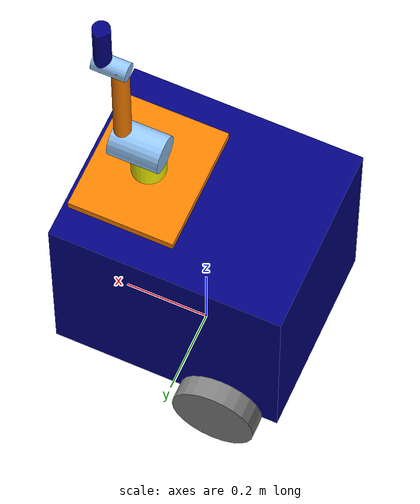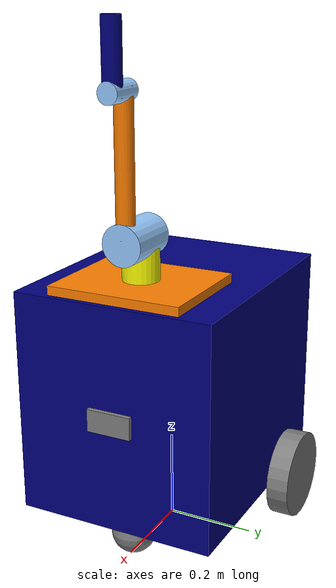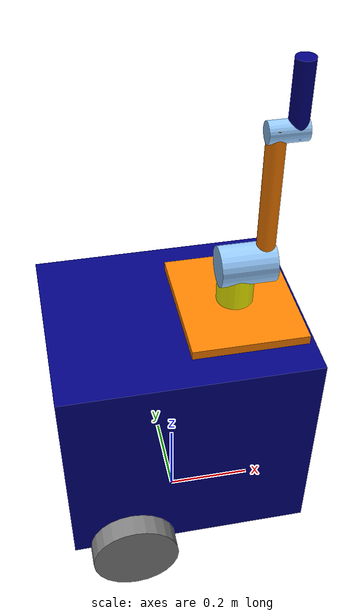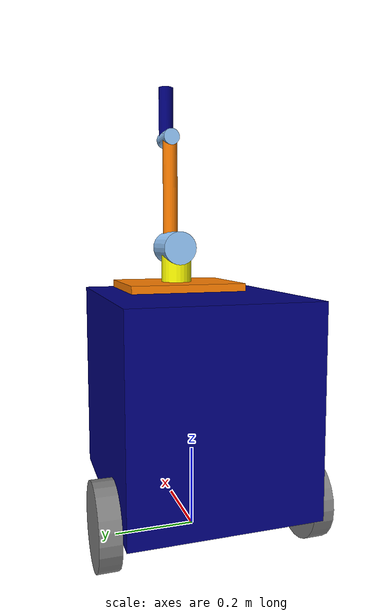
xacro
<?xml version="1.0"?>
<robot name="my_robot" xmlns:xacro="http://www.ros.org/wiki/xacro">

    <xacro:include filename="common_properties.xacro" />
    <xacro:include filename="mobile_base.xacro" />
    <xacro:include filename="mobile_base_gazebo.xacro" />

    <!-- connecting the arm with its joint -->
    <xacro:include filename="arm.xacro" />
    <xacro:include filename="arm_gazebo.xacro" />
    <joint name="mobile_base_arm_joint" type="fixed">
        <parent link="base_link" />
        <child link="link_0" />
        <origin xyz="${base_length / 4.0} 0 ${base_height}" rpy="0 0 0" />
    </joint>

    <!-- connecting the depth camera with its joint -->

    <xacro:include filename="depth_camera.xacro" />

    <joint name="base_camera_joint" type="fixed">
        <parent link="base_link" />
        <child link="camera_link" />
        <origin xyz="${(base_length + camera_length) / 2.0} 0 ${base_height / 2.0}" rpy="0 0 0" />
    </joint>

</robot>

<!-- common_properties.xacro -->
<robot xmlns:xacro="http://www.ros.org/wiki/xacro">
    <material name="blue">
        <color rgba="0 0 0.5 1" />
    </material>

    <material name="grey">
        <color rgba="0.5 0.5 0.5 1" />
    </material>

    <material name="black">
        <color rgba="0.0 0.0 0.0 1" />
    </material>

    <material name="orange">
        <color rgba="1.0 0.5 0 1" />
    </material>

    <material name="yellow">
        <color rgba="1.0 1.0 0 1" />
    </material>

    <xacro:macro name="box_inertia" params="m l w h xyz rpy">
        <inertial>
            <origin xyz="${xyz}" rpy="${rpy}" />
            <mass value="${m}" />
            <inertia ixx="${(m/12) * (h*h + l*l)}" ixy="0" ixz="0"
                iyy="${(m/12) * (w*w + l*l)}" iyz="0"
                izz="${(m/12) * (w*w + h*h)}" />
        </inertial>
    </xacro:macro>

    <xacro:macro name="inertial_block" params="mass length radius">
        <inertial>
            <origin xyz="0 0 ${length/2}" rpy="0 0 0" />
            <mass value="${mass}" />
            <inertia
                ixx="${mass / 12.0 * (2*radius*2*radius + length*length)}" ixy="0.0" ixz="0.0"
                iyy="${mass / 12.0 * (length*length + 2*radius*2*radius)}" iyz="0.0"
                izz="${mass / 12.0 * (2*radius*2*radius + 2*radius*2*radius)}" />
        </inertial>
    </xacro:macro>

    <xacro:macro name="cylinder_inertia" params="m r h xyz rpy">
        <inertial>
            <origin xyz="${xyz}" rpy="${rpy}" />
            <mass value="${m}" />
            <inertia ixx="${(m/12) * (3*r*r + h*h)}" ixy="0" ixz="0"
                iyy="${(m/12) * (3*r*r + h*h)}" iyz="0"
                izz="${(m/2) * (r*r)}" />
        </inertial>
    </xacro:macro>

    <xacro:macro name="sphere_inertia" params="m r xyz rpy">
        <inertial>
            <origin xyz="${xyz}" rpy="${rpy}" />
            <mass value="${m}" />
            <inertia ixx="${(2/5) * m * r * r}" ixy="0" ixz="0"
                iyy="${(2/5) * m * r * r}" iyz="0"
                izz="${(2/5) * m * r * r}" />
        </inertial>
    </xacro:macro>

</robot>

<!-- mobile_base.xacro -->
<robot xmlns:xacro="http://www.ros.org/wiki/xacro">
    <xacro:property name="base_length" value="0.55" />
    <xacro:property name="base_width" value="0.45" />
    <xacro:property name="base_height" value="0.5" />
    <xacro:property name="wheel_radius" value="0.1" />
    <xacro:property name="wheel_length" value="0.05" />

    <link name="base_footprint" />

    <link name="base_link">
        <visual>
            <geometry>
                <box size="${base_length} ${base_width} ${base_height}" />
            </geometry>
            <origin xyz="0 0 ${base_height / 2.0}" rpy="0 0 0" />
            <material name="blue" />
        </visual>
        <collision>
            <geometry>
                <box size="${base_length} ${base_width} ${base_height}" />
            </geometry>
            <origin xyz="0 0 ${base_height / 2.0}" rpy="0 0 0" />
        </collision>
        <xacro:box_inertia m="5.0" l="${2*base_length}" w="${2*base_width}" h="${2*base_height}"
                           xyz="0 0 ${base_height / 2.0}" rpy="0 0 0" />
    </link>

    <xacro:macro name="wheel_link" params="prefix">
        <link name="${prefix}_wheel_link">
            <visual>
                <geometry>
                    <cylinder radius="${wheel_radius}" length="${wheel_length}" />
                </geometry>
                <origin xyz="0 0 0" rpy="${pi / 2.0} 0 0" />
                <material name="grey" />
            </visual>
            <collision>
                <geometry>
                    <cylinder radius="${wheel_radius}" length="${wheel_length}" />
                </geometry>
                <origin xyz="0 0 0" rpy="${pi / 2.0} 0 0" />
            </collision>
            <xacro:cylinder_inertia m="1.0" r="${2*wheel_radius}" h="${2*wheel_length}"
                                    xyz="0 0 0" rpy="${pi / 2.0} 0 0" />
        </link>
    </xacro:macro>

    <xacro:wheel_link prefix="right" />
    <xacro:wheel_link prefix="left" />

    <link name="caster_wheel_link">
        <visual>
            <geometry>
                <sphere radius="${wheel_radius / 2.0}" />
            </geometry>
            <origin xyz="0 0 0" rpy="0 0 0" />
            <material name="grey" />
        </visual>
        <collision>
            <geometry>
                <sphere radius="${wheel_radius / 2.0}" />
            </geometry>
            <origin xyz="0 0 0" rpy="0 0 0" />
        </collision>
        <xacro:sphere_inertia m="0.5" r="${2*wheel_radius / 2.0}"
                              xyz="0 0 0" rpy="0 0 0" />
    </link>

    <joint name="base_joint" type="fixed">
        <parent link="base_footprint" />
        <child link="base_link" />
        <origin xyz="0 0 ${wheel_radius}" rpy="0 0 0"/>
    </joint>

    <joint name="base_right_wheel_joint" type="continuous">
        <parent link="base_link" />
        <child link="right_wheel_link" />
        <origin xyz="${-base_length / 4.0} ${-(base_width + wheel_length) / 2.0} 0" rpy="0 0 0" />
        <axis xyz="0 1 0" />
    </joint>

    <joint name="base_left_wheel_joint" type="continuous">
        <parent link="base_link" />
        <child link="left_wheel_link" />
        <origin xyz="${-base_length / 4.0} ${(base_width + wheel_length) / 2.0} 0" rpy="0 0 0" />
        <axis xyz="0 1 0" />
    </joint>

    <joint name="base_caster_wheel_joint" type="fixed">
        <parent link="base_link" />
        <child link="caster_wheel_link" />
        <origin xyz="${base_length / 3.0} 0 ${-wheel_radius / 2.0}" rpy="0 0 0" />
    </joint>

</robot>

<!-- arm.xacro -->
<robot xmlns:xacro="http://www.ros.org/wiki/xacro">

    <xacro:include filename="arm_joints.xacro" />

    <xacro:property name="link_0_length" value="0.25" />
    <xacro:property name="link_0_width" value="0.3" />
    <xacro:property name="link_0_height" value="0.02" />

    <xacro:property name="link_1_radius" value="0.04" />
    <xacro:property name="link_1_length" value="0.1" />

    <xacro:property name="link_2_radius" value="0.02" />
    <xacro:property name="link_2_length" value="0.3" />

    <xacro:property name="link_3_radius" value="0.02" />
    <xacro:property name="link_3_length" value="0.15" />

    <material name="LightBlue">
        <color rgba="0.589 0.793 1.0 1.0"/>
    </material>

    <link name="link_0">
        <visual>
            <geometry>
                <box size="${link_0_length} ${link_0_width} ${link_0_height}" />
            </geometry>
            <origin xyz="0 0 ${link_0_height / 2.0}" rpy="0 0 0" />
            <material name="orange" />
        </visual>
        <collision>
            <geometry>
                <box size="${link_0_length} ${link_0_width} ${link_0_height}" />
            </geometry>
            <origin xyz="0 0 ${link_0_height / 2.0}" rpy="0 0 0" />
        </collision>
        <xacro:box_inertia m="0.5" l="${2*link_0_length}" w="${2*link_0_width}"
            h="${2*link_0_height}"
            xyz="0 0 ${link_0_height / 2.0}" rpy="0 0 0" />
    </link>

    <joint name="joint_1" type="revolute">
        <parent link="link_0" />
        <child link="link_1" />
        <origin xyz="0 0 ${link_0_height}" rpy="0 0 0" />
        <axis xyz="0 0 1" />
        <limit lower="-${pi/4}" upper="${pi/2}" effort="100" velocity="1.0" />
        <dynamics friction="0.05" damping="0.1" />
    </joint>

    <link name="link_1">
        <visual>
            <geometry>
                <cylinder radius="${link_1_radius}" length="${link_1_length}" />
            </geometry>
            <origin xyz="0 0 ${link_1_length / 2.0}" rpy="0 0 0" />
            <material name="yellow" />
        </visual>
        <collision>
            <geometry>
                <cylinder radius="${link_1_radius}" length="${link_1_length}" />
            </geometry>
            <origin xyz="0 0 ${link_1_length / 2.0}" rpy="0 0 0" />
        </collision>
        <xacro:cylinder_inertia m="10" r="${2*link_1_radius}" h="${2*link_1_length}"
            xyz="0 0 ${link_1_length / 2.0}" rpy="0 0 0" />
    </link>

    <link name="link_1_endlink">
        <xacro:inertial_block mass="${10/3.0}" length="${2*link_1_radius+2*link_2_radius}"
            radius="${link_1_radius}" />
        <visual>
            <origin xyz="0.0 0.0 ${(2*link_1_radius+2*link_2_radius)/2.0}" rpy="0.0 0.0 0.0" />
            <geometry>
                <cylinder radius="${link_1_radius*1.1}"
                    length="${2*link_1_radius+2*link_2_radius}" />
            </geometry>
            <material name="LightBlue" />
        </visual>

        <collision>
            <origin xyz="0.0 0.0 ${(2*link_1_radius+2*link_2_radius)/2.0}" rpy="0.0 0.0 0.0" />
            <geometry>
                <cylinder radius="${link_1_radius*1.1}"
                    length="${2*link_1_radius+2*link_2_radius}" />
            </geometry>
        </collision>

    </link>

    <joint name="link_1_endjoint" type="fixed">
        <origin xyz="${-link_1_radius} 0.0 ${link_1_length - 0.01}" rpy="0.0 ${pi/2.0} 0.0" />
        <parent link="link_1" />
        <child link="link_1_endlink" />
    </joint>

    <joint name="joint_2" type="revolute">
        <parent link="link_1" />
        <child link="link_2" />
        <origin xyz="${link_1_radius + link_2_radius} 0.0 ${link_1_length}" rpy="0.0 0.0 0.0" />
        <axis xyz="1 0 0" />
        <limit lower="0" upper="${pi/2}" effort="100" velocity="1.0" />
        <dynamics friction="0.05" damping="0.1" />
    </joint>

    <link name="link_2">
        <visual>
            <geometry>
                <cylinder radius="${link_2_radius}" length="${link_2_length}" />
            </geometry>
            <origin xyz="0 0 ${link_2_length / 2.0}" rpy="0 0 0" />
            <material name="orange" />
        </visual>
        <collision>
            <geometry>
                <cylinder radius="${link_2_radius}" length="${link_2_length}" />
            </geometry>
            <origin xyz="0 0 ${link_2_length / 2.0}" rpy="0 0 0" />
        </collision>
        <xacro:cylinder_inertia m="0.3" r="${2*link_2_radius}" h="${2*link_2_length}"
            xyz="0 0 ${link_2_length / 2.0}" rpy="0 0 0" />
    </link>

    <link name="link_2_endlink">
        <xacro:inertial_block mass="${0.3/3.0}" length="${2*link_2_radius+2*link_3_radius}" radius="${link_2_radius}"/>
        <visual>
            <origin xyz="0.0 0.0 ${(2*link_2_radius+2*link_3_radius)/2.0}" rpy="0.0 0.0 0.0"/>
            <geometry>
                <cylinder radius="${link_2_radius*1.1}" length="${2*link_2_radius+2*link_3_radius}"/>
            </geometry>
            <material name="LightBlue"/>
        </visual>

        <collision>
            <origin xyz="0.0 0.0 ${(2*link_2_radius+2*link_3_radius)/2.0}" rpy="0.0 0.0 0.0"/>
            <geometry>
                <cylinder radius="${link_2_radius*1.1}" length="${2*link_2_radius+2*link_3_radius}"/>
            </geometry>
        </collision>
    </link>

    <joint name="link_2_endjoint" type="fixed">
        <origin xyz="${-link_2_radius} 0.0 ${link_2_length - 0.01}" rpy="0.0 ${pi/2.0} 0.0"/>
        <parent link="link_2"/>
        <child link="link_2_endlink"/>
    </joint>

    <joint name="joint_3" type="revolute">
        <parent link="link_2" />
        <child link="link_3" />
        <origin xyz="${link_2_radius + link_3_radius} 0.0 ${link_2_length - link_2_radius}" rpy="0.0 0.0 0.0"/>
        <axis xyz="1 0 0" />
        <limit lower="-${pi/2}" upper="${pi/2}" effort="100" velocity="1.0" />
        <dynamics friction="0.05" damping="0.15" />
    </joint>

    <link name="link_3">
        <visual>
            <geometry>
                <cylinder radius="${link_3_radius}" length="${link_3_length}" />
            </geometry>
            <origin xyz="0 0 ${link_3_length / 2.0}" rpy="0 0 0" />
            <material name="blue" />
        </visual>
        <collision>
            <geometry>
                <cylinder radius="${link_3_radius}" length="${link_3_length}" />
            </geometry>
            <origin xyz="0 0 ${link_3_length / 2.0}" rpy="0 0 0" />
        </collision>
        <xacro:cylinder_inertia m="0.3" r="${2*link_3_radius}" h="${2*link_3_length}"
            xyz="0 0 ${link_3_length / 2.0}" rpy="0 0 0" />
    </link>

    <xacro:config_ctr_gazebo />

</robot>

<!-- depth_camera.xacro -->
<robot xmlns:xacro="http://www.ros.org/wiki/xacro">
    <xacro:property name="camera_length" value="0.01" />
    <xacro:property name="camera_width" value="0.1" />
    <xacro:property name="camera_height" value="0.05" />

    <!-- camera frame(ROS Body standard) -->
    <link name="camera_link">
        <visual>
            <geometry>
                <box size="${camera_length} ${camera_width} ${camera_height}" />
            </geometry>
            <material name="grey" />
        </visual>
        <collision>
            <geometry>
                <box size="${camera_length} ${camera_width} ${camera_height}" />
            </geometry>
        </collision>
        <xacro:box_inertia m="0.1" l="${camera_length}" w="${camera_width}" h="${camera_height}"
            xyz="0 0 0" rpy="0 0 0" />
    </link>

    <!-- image frame -->
    <link name="camera_link_optical">
    </link>

    <joint name="camera_optical_joint" type="fixed">
        <origin xyz="0 0 0" rpy="${-pi/2} 0 ${-pi/2}" />
        <parent link="camera_link" />
        <child link="camera_link_optical" />
    </joint>

    <gazebo reference="camera_link">
        <material>Gazebo/Red</material>
        <sensor name="camera_sensor" type="depth">
            <pose>0 0 0 0 0 0</pose>
            <visualize>true</visualize>
            <update_rate>10.0</update_rate>
            <camera>
                <horiontal_fov>1.089</horiontal_fov>
                <image>
                    <format>B8G8R8</format>
                    <width>640</width>
                    <height>480</height>
                </image>
                <clip>
                    <near>0.05</near>
                    <far>8.0</far>
                </clip>
            </camera>
            <plugin name="camera_controller" filename="libgazebo_ros_camera.so">
                <frame_name>camera_link_optical</frame_name>
                <min_depth>0.1</min_depth>
                <max_depth>100</max_depth>
            </plugin>
        </sensor>
    </gazebo>

</robot>
